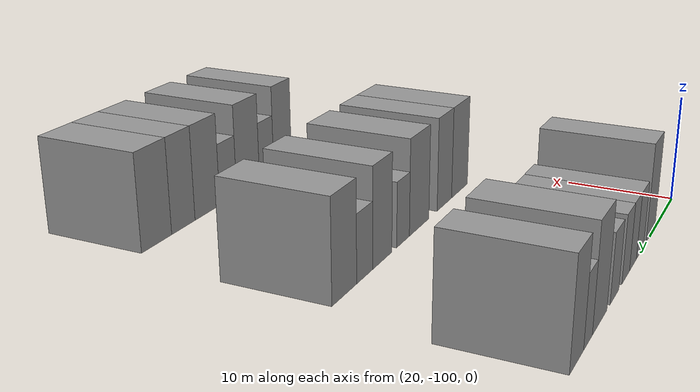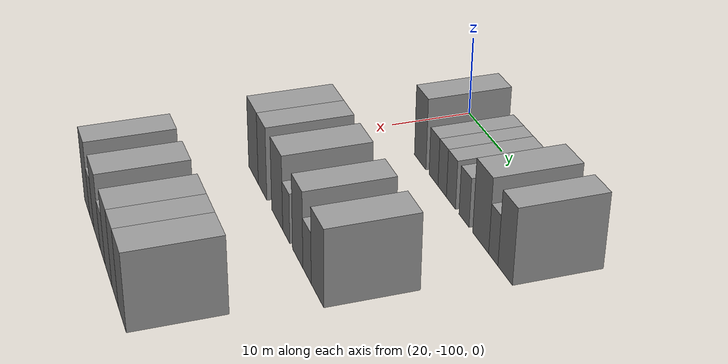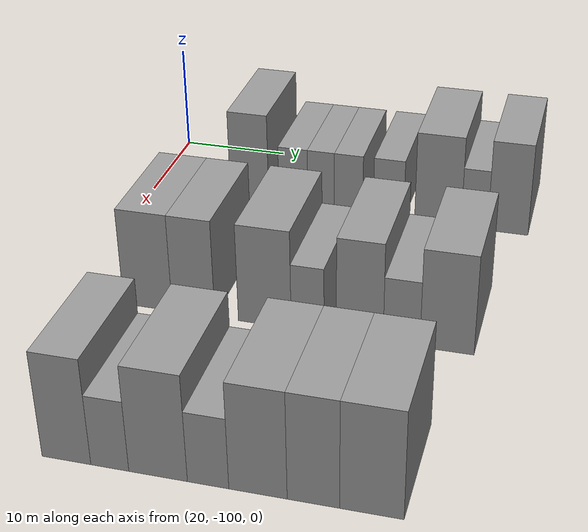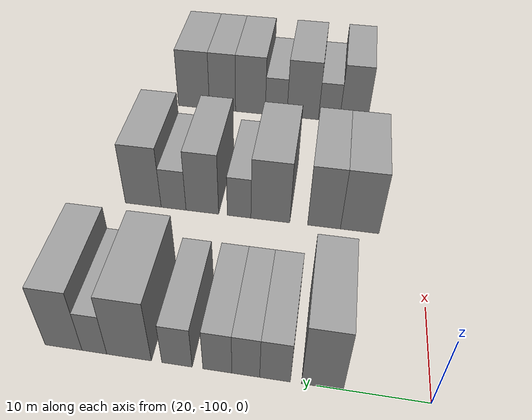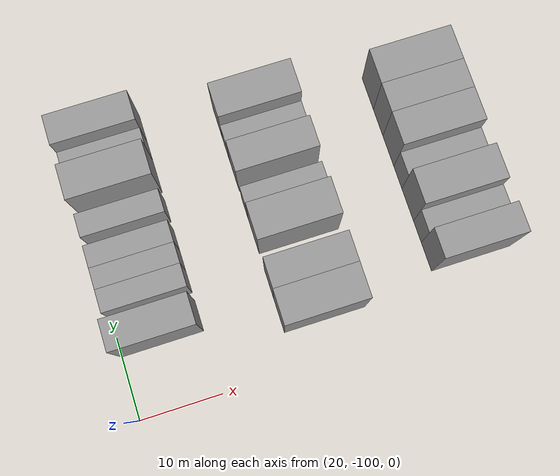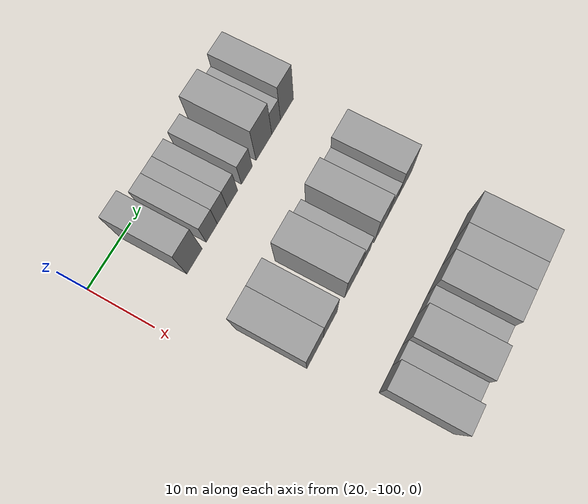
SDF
<sdf version="1.6">
 <world name="default">
  <model name="building_38">
   <static>1</static>
   <pose>25.0000 -90.4630 0 0.000000 0.000000 0.000000</pose>
   <link name="link">
    <pose>0 0 4.50 0 0 0</pose>
    <collision name="collision"><geometry><box><size>10.0000 3.7415 9.0000</size></box></geometry></collision>
    <visual name="visual">
     <cast_shadows>0</cast_shadows>
     <geometry><box><size>10.0000 3.7415 9.0000</size></box></geometry>
     <material>
      <script>
       <uri>model://grey_wall/materials/scripts</uri>
       <uri>model://grey_wall/materials/textures</uri>
       <name>vrc/grey_wall</name>
      </script>
     </material>
    </visual>
   </link>
  </model>
  <model name="building_39">
   <static>1</static>
   <pose>25.0000 -86.2016 0 0.000000 0.000000 0.000000</pose>
   <link name="link">
    <pose>0 0 3.00 0 0 0</pose>
    <collision name="collision"><geometry><box><size>10.0000 2.7812 6.0000</size></box></geometry></collision>
    <visual name="visual">
     <cast_shadows>0</cast_shadows>
     <geometry><box><size>10.0000 2.7812 6.0000</size></box></geometry>
     <material>
      <script>
       <uri>model://grey_wall/materials/scripts</uri>
       <uri>model://grey_wall/materials/textures</uri>
       <name>vrc/grey_wall</name>
      </script>
     </material>
    </visual>
   </link>
  </model>
  <model name="building_40">
   <static>1</static>
   <pose>25.0000 -83.5370 0 0.000000 0.000000 0.000000</pose>
   <link name="link">
    <pose>0 0 3.00 0 0 0</pose>
    <collision name="collision"><geometry><box><size>10.0000 2.5480 6.0000</size></box></geometry></collision>
    <visual name="visual">
     <cast_shadows>0</cast_shadows>
     <geometry><box><size>10.0000 2.5480 6.0000</size></box></geometry>
     <material>
      <script>
       <uri>model://grey_wall/materials/scripts</uri>
       <uri>model://grey_wall/materials/textures</uri>
       <name>vrc/grey_wall</name>
      </script>
     </material>
    </visual>
   </link>
  </model>
  <model name="building_41">
   <static>1</static>
   <pose>25.0000 -80.9181 0 0.000000 0.000000 0.000000</pose>
   <link name="link">
    <pose>0 0 3.00 0 0 0</pose>
    <collision name="collision"><geometry><box><size>10.0000 2.6897 6.0000</size></box></geometry></collision>
    <visual name="visual">
     <cast_shadows>0</cast_shadows>
     <geometry><box><size>10.0000 2.6897 6.0000</size></box></geometry>
     <material>
      <script>
       <uri>model://grey_wall/materials/scripts</uri>
       <uri>model://grey_wall/materials/textures</uri>
       <name>vrc/grey_wall</name>
      </script>
     </material>
    </visual>
   </link>
  </model>
  <model name="building_42">
   <static>1</static>
   <pose>25.0000 -77.1449 0 0.000000 0.000000 0.000000</pose>
   <link name="link">
    <pose>0 0 3.00 0 0 0</pose>
    <collision name="collision"><geometry><box><size>10.0000 2.8566 6.0000</size></box></geometry></collision>
    <visual name="visual">
     <cast_shadows>0</cast_shadows>
     <geometry><box><size>10.0000 2.8566 6.0000</size></box></geometry>
     <material>
      <script>
       <uri>model://grey_wall/materials/scripts</uri>
       <uri>model://grey_wall/materials/textures</uri>
       <name>vrc/grey_wall</name>
      </script>
     </material>
    </visual>
   </link>
  </model>
  <model name="building_43">
   <static>1</static>
   <pose>25.0000 -72.5755 0 0.000000 0.000000 0.000000</pose>
   <link name="link">
    <pose>0 0 4.50 0 0 0</pose>
    <collision name="collision"><geometry><box><size>10.0000 4.2822 9.0000</size></box></geometry></collision>
    <visual name="visual">
     <cast_shadows>0</cast_shadows>
     <geometry><box><size>10.0000 4.2822 9.0000</size></box></geometry>
     <material>
      <script>
       <uri>model://grey_wall/materials/scripts</uri>
       <uri>model://grey_wall/materials/textures</uri>
       <name>vrc/grey_wall</name>
      </script>
     </material>
    </visual>
   </link>
  </model>
  <model name="building_44">
   <static>1</static>
   <pose>25.0000 -69.2297 0 0.000000 0.000000 0.000000</pose>
   <link name="link">
    <pose>0 0 3.00 0 0 0</pose>
    <collision name="collision"><geometry><box><size>10.0000 2.4093 6.0000</size></box></geometry></collision>
    <visual name="visual">
     <cast_shadows>0</cast_shadows>
     <geometry><box><size>10.0000 2.4093 6.0000</size></box></geometry>
     <material>
      <script>
       <uri>model://grey_wall/materials/scripts</uri>
       <uri>model://grey_wall/materials/textures</uri>
       <name>vrc/grey_wall</name>
      </script>
     </material>
    </visual>
   </link>
  </model>
  <model name="building_45">
   <static>1</static>
   <pose>25.0000 -66.2051 0 0.000000 0.000000 0.000000</pose>
   <link name="link">
    <pose>0 0 4.50 0 0 0</pose>
    <collision name="collision"><geometry><box><size>10.0000 3.6398 9.0000</size></box></geometry></collision>
    <visual name="visual">
     <cast_shadows>0</cast_shadows>
     <geometry><box><size>10.0000 3.6398 9.0000</size></box></geometry>
     <material>
      <script>
       <uri>model://grey_wall/materials/scripts</uri>
       <uri>model://grey_wall/materials/textures</uri>
       <name>vrc/grey_wall</name>
      </script>
     </material>
    </visual>
   </link>
  </model>
  <model name="building_154">
   <static>1</static>
   <pose>44.0000 -93.3029 0 0.000000 0.000000 0.000000</pose>
   <link name="link">
    <pose>0 0 4.50 0 0 0</pose>
    <collision name="collision"><geometry><box><size>10.0000 4.2390 9.0000</size></box></geometry></collision>
    <visual name="visual">
     <cast_shadows>0</cast_shadows>
     <geometry><box><size>10.0000 4.2390 9.0000</size></box></geometry>
     <material>
      <script>
       <uri>model://grey_wall/materials/scripts</uri>
       <uri>model://grey_wall/materials/textures</uri>
       <name>vrc/grey_wall</name>
      </script>
     </material>
    </visual>
   </link>
  </model>
  <model name="building_155">
   <static>1</static>
   <pose>44.0000 -89.3568 0 0.000000 0.000000 0.000000</pose>
   <link name="link">
    <pose>0 0 4.50 0 0 0</pose>
    <collision name="collision"><geometry><box><size>10.0000 3.6531 9.0000</size></box></geometry></collision>
    <visual name="visual">
     <cast_shadows>0</cast_shadows>
     <geometry><box><size>10.0000 3.6531 9.0000</size></box></geometry>
     <material>
      <script>
       <uri>model://grey_wall/materials/scripts</uri>
       <uri>model://grey_wall/materials/textures</uri>
       <name>vrc/grey_wall</name>
      </script>
     </material>
    </visual>
   </link>
  </model>
  <model name="building_156">
   <static>1</static>
   <pose>44.0000 -83.3207 0 0.000000 0.000000 0.000000</pose>
   <link name="link">
    <pose>0 0 4.50 0 0 0</pose>
    <collision name="collision"><geometry><box><size>10.0000 4.4190 9.0000</size></box></geometry></collision>
    <visual name="visual">
     <cast_shadows>0</cast_shadows>
     <geometry><box><size>10.0000 4.4190 9.0000</size></box></geometry>
     <material>
      <script>
       <uri>model://grey_wall/materials/scripts</uri>
       <uri>model://grey_wall/materials/textures</uri>
       <name>vrc/grey_wall</name>
      </script>
     </material>
    </visual>
   </link>
  </model>
  <model name="building_157">
   <static>1</static>
   <pose>44.0000 -79.7532 0 0.000000 0.000000 0.000000</pose>
   <link name="link">
    <pose>0 0 3.00 0 0 0</pose>
    <collision name="collision"><geometry><box><size>10.0000 2.7160 6.0000</size></box></geometry></collision>
    <visual name="visual">
     <cast_shadows>0</cast_shadows>
     <geometry><box><size>10.0000 2.7160 6.0000</size></box></geometry>
     <material>
      <script>
       <uri>model://grey_wall/materials/scripts</uri>
       <uri>model://grey_wall/materials/textures</uri>
       <name>vrc/grey_wall</name>
      </script>
     </material>
    </visual>
   </link>
  </model>
  <model name="building_158">
   <static>1</static>
   <pose>44.0000 -75.4937 0 0.000000 0.000000 0.000000</pose>
   <link name="link">
    <pose>0 0 4.50 0 0 0</pose>
    <collision name="collision"><geometry><box><size>10.0000 3.8029 9.0000</size></box></geometry></collision>
    <visual name="visual">
     <cast_shadows>0</cast_shadows>
     <geometry><box><size>10.0000 3.8029 9.0000</size></box></geometry>
     <material>
      <script>
       <uri>model://grey_wall/materials/scripts</uri>
       <uri>model://grey_wall/materials/textures</uri>
       <name>vrc/grey_wall</name>
      </script>
     </material>
    </visual>
   </link>
  </model>
  <model name="building_159">
   <static>1</static>
   <pose>44.0000 -72.1260 0 0.000000 0.000000 0.000000</pose>
   <link name="link">
    <pose>0 0 3.00 0 0 0</pose>
    <collision name="collision"><geometry><box><size>10.0000 2.9324 6.0000</size></box></geometry></collision>
    <visual name="visual">
     <cast_shadows>0</cast_shadows>
     <geometry><box><size>10.0000 2.9324 6.0000</size></box></geometry>
     <material>
      <script>
       <uri>model://grey_wall/materials/scripts</uri>
       <uri>model://grey_wall/materials/textures</uri>
       <name>vrc/grey_wall</name>
      </script>
     </material>
    </visual>
   </link>
  </model>
  <model name="building_160">
   <static>1</static>
   <pose>44.0000 -68.5255 0 0.000000 0.000000 0.000000</pose>
   <link name="link">
    <pose>0 0 4.50 0 0 0</pose>
    <collision name="collision"><geometry><box><size>10.0000 4.2687 9.0000</size></box></geometry></collision>
    <visual name="visual">
     <cast_shadows>0</cast_shadows>
     <geometry><box><size>10.0000 4.2687 9.0000</size></box></geometry>
     <material>
      <script>
       <uri>model://grey_wall/materials/scripts</uri>
       <uri>model://grey_wall/materials/textures</uri>
       <name>vrc/grey_wall</name>
      </script>
     </material>
    </visual>
   </link>
  </model>
  <model name="building_266">
   <static>1</static>
   <pose>63.0000 -91.9863 0 0.000000 0.000000 0.000000</pose>
   <link name="link">
    <pose>0 0 4.50 0 0 0</pose>
    <collision name="collision"><geometry><box><size>10.0000 3.6464 9.0000</size></box></geometry></collision>
    <visual name="visual">
     <cast_shadows>0</cast_shadows>
     <geometry><box><size>10.0000 3.6464 9.0000</size></box></geometry>
     <material>
      <script>
       <uri>model://grey_wall/materials/scripts</uri>
       <uri>model://grey_wall/materials/textures</uri>
       <name>vrc/grey_wall</name>
      </script>
     </material>
    </visual>
   </link>
  </model>
  <model name="building_267">
   <static>1</static>
   <pose>63.0000 -88.7654 0 0.000000 0.000000 0.000000</pose>
   <link name="link">
    <pose>0 0 3.00 0 0 0</pose>
    <collision name="collision"><geometry><box><size>10.0000 2.7954 6.0000</size></box></geometry></collision>
    <visual name="visual">
     <cast_shadows>0</cast_shadows>
     <geometry><box><size>10.0000 2.7954 6.0000</size></box></geometry>
     <material>
      <script>
       <uri>model://grey_wall/materials/scripts</uri>
       <uri>model://grey_wall/materials/textures</uri>
       <name>vrc/grey_wall</name>
      </script>
     </material>
    </visual>
   </link>
  </model>
  <model name="building_268">
   <static>1</static>
   <pose>63.0000 -85.2446 0 0.000000 0.000000 0.000000</pose>
   <link name="link">
    <pose>0 0 4.50 0 0 0</pose>
    <collision name="collision"><geometry><box><size>10.0000 4.2461 9.0000</size></box></geometry></collision>
    <visual name="visual">
     <cast_shadows>0</cast_shadows>
     <geometry><box><size>10.0000 4.2461 9.0000</size></box></geometry>
     <material>
      <script>
       <uri>model://grey_wall/materials/scripts</uri>
       <uri>model://grey_wall/materials/textures</uri>
       <name>vrc/grey_wall</name>
      </script>
     </material>
    </visual>
   </link>
  </model>
  <model name="building_269">
   <static>1</static>
   <pose>63.0000 -81.6474 0 0.000000 0.000000 0.000000</pose>
   <link name="link">
    <pose>0 0 3.00 0 0 0</pose>
    <collision name="collision"><geometry><box><size>10.0000 2.9483 6.0000</size></box></geometry></collision>
    <visual name="visual">
     <cast_shadows>0</cast_shadows>
     <geometry><box><size>10.0000 2.9483 6.0000</size></box></geometry>
     <material>
      <script>
       <uri>model://grey_wall/materials/scripts</uri>
       <uri>model://grey_wall/materials/textures</uri>
       <name>vrc/grey_wall</name>
      </script>
     </material>
    </visual>
   </link>
  </model>
  <model name="building_270">
   <static>1</static>
   <pose>63.0000 -78.1308 0 0.000000 0.000000 0.000000</pose>
   <link name="link">
    <pose>0 0 4.50 0 0 0</pose>
    <collision name="collision"><geometry><box><size>10.0000 4.0850 9.0000</size></box></geometry></collision>
    <visual name="visual">
     <cast_shadows>0</cast_shadows>
     <geometry><box><size>10.0000 4.0850 9.0000</size></box></geometry>
     <material>
      <script>
       <uri>model://grey_wall/materials/scripts</uri>
       <uri>model://grey_wall/materials/textures</uri>
       <name>vrc/grey_wall</name>
      </script>
     </material>
    </visual>
   </link>
  </model>
  <model name="building_271">
   <static>1</static>
   <pose>63.0000 -74.2849 0 0.000000 0.000000 0.000000</pose>
   <link name="link">
    <pose>0 0 4.50 0 0 0</pose>
    <collision name="collision"><geometry><box><size>10.0000 3.6068 9.0000</size></box></geometry></collision>
    <visual name="visual">
     <cast_shadows>0</cast_shadows>
     <geometry><box><size>10.0000 3.6068 9.0000</size></box></geometry>
     <material>
      <script>
       <uri>model://grey_wall/materials/scripts</uri>
       <uri>model://grey_wall/materials/textures</uri>
       <name>vrc/grey_wall</name>
      </script>
     </material>
    </visual>
   </link>
  </model>
  <model name="building_272">
   <static>1</static>
   <pose>63.0000 -70.3093 0 0.000000 0.000000 0.000000</pose>
   <link name="link">
    <pose>0 0 4.50 0 0 0</pose>
    <collision name="collision"><geometry><box><size>10.0000 4.3444 9.0000</size></box></geometry></collision>
    <visual name="visual">
     <cast_shadows>0</cast_shadows>
     <geometry><box><size>10.0000 4.3444 9.0000</size></box></geometry>
     <material>
      <script>
       <uri>model://grey_wall/materials/scripts</uri>
       <uri>model://grey_wall/materials/textures</uri>
       <name>vrc/grey_wall</name>
      </script>
     </material>
    </visual>
   </link>
  </model>
 </world>
</sdf>
